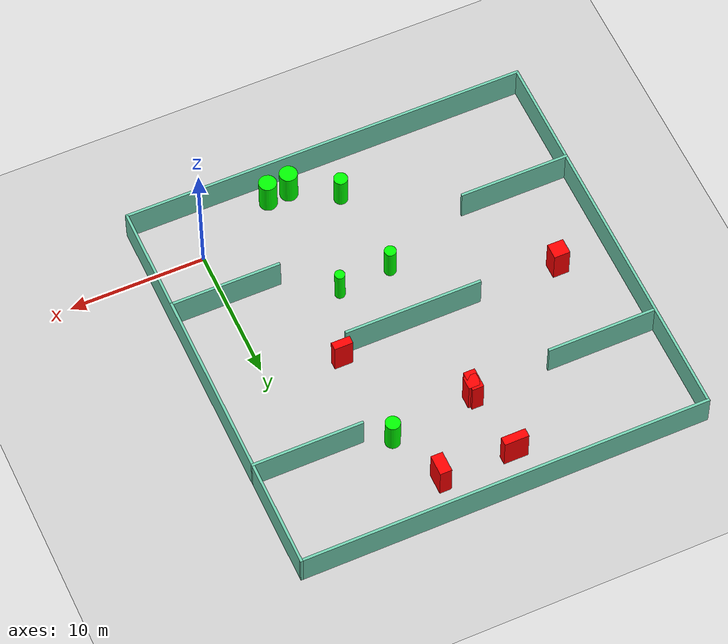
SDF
<sdf version="1.7">
 <world name="default">
  <light name="sun" type="directional">
   <pose>0 0 10 0 -0 0</pose>
   <diffuse>0.8 0.8 0.8 1</diffuse>
   <specular>0.2 0.2 0.2 1</specular>
   <attenuation>
    <range>1000</range>
    <constant>0.9</constant>
    <linear>0.01</linear>
    <quadratic>0.001</quadratic>
   </attenuation>
   <direction>-0.5 0.1 -0.9</direction>
   <spot><inner_angle>0</inner_angle><outer_angle>0</outer_angle><falloff>0</falloff></spot>
  </light>
  <model name="ground_plane">
   <static>1</static>
   <link name="link">
    <collision name="collision">
     <geometry><plane><normal>0 0 1</normal><size>100 100</size></plane></geometry>
     <surface>
      <contact><collide_bitmask>65535</collide_bitmask></contact>
      <friction><ode><mu>100</mu><mu2>50</mu2></ode></friction>
     </surface>
    </collision>
    <visual name="visual">
     <cast_shadows>0</cast_shadows>
     <geometry><plane><normal>0 0 1</normal><size>100 100</size></plane></geometry>
     <material>
      <script><uri>file://media/materials/scripts/gazebo.material</uri><name>Gazebo/Grey</name></script>
     </material>
    </visual>
   </link>
  </model>
  <gravity>0 0 -9.8</gravity>
  <magnetic_field>6e-06 2.3e-05 -4.2e-05</magnetic_field>
  <atmosphere type="adiabatic"/>
  <physics type="ode">
   <max_step_size>0.001</max_step_size>
   <real_time_factor>1</real_time_factor>
   <real_time_update_rate>1000</real_time_update_rate>
  </physics>
  <scene><ambient>0.4 0.4 0.4 1</ambient><background>0.7 0.7 0.7 1</background><shadows>1</shadows></scene>
  <spherical_coordinates>
   <surface_model>EARTH_WGS84</surface_model>
   <latitude_deg>0</latitude_deg>
   <longitude_deg>0</longitude_deg>
   <elevation>0</elevation>
   <heading_deg>0</heading_deg>
  </spherical_coordinates>
  <model name="my_base_walls">
   <link name="Wall_10">
    <collision name="Wall_10_Collision">
     <geometry><box><size>8.2 0.2 2.5</size></box></geometry>
     <pose>0 0 1.25 0 -0 0</pose>
    </collision>
    <visual name="Wall_10_Visual">
     <pose>0 0 1.25 0 -0 0</pose>
     <geometry><box><size>8.2 0.2 2.5</size></box></geometry>
     <material>
      <script><uri>file://media/materials/scripts/gazebo.material</uri><name>Gazebo/Grey</name></script>
      <ambient>0.435294 0.796078 0.67451 1</ambient>
     </material>
     <meta><layer>0</layer></meta>
    </visual>
    <pose>-11 -7 0 0 -0 0</pose>
   </link>
   <link name="Wall_12">
    <collision name="Wall_12_Collision">
     <geometry><box><size>8.2 0.2 2.5</size></box></geometry>
     <pose>0 0 1.25 0 -0 0</pose>
    </collision>
    <visual name="Wall_12_Visual">
     <pose>0 0 1.25 0 -0 0</pose>
     <geometry><box><size>8.2 0.2 2.5</size></box></geometry>
     <material>
      <script><uri>file://media/materials/scripts/gazebo.material</uri><name>Gazebo/Grey</name></script>
      <ambient>0.435294 0.796078 0.67451 1</ambient>
     </material>
     <meta><layer>0</layer></meta>
    </visual>
    <pose>-11 7 0 0 -0 0</pose>
   </link>
   <link name="Wall_14">
    <collision name="Wall_14_Collision">
     <geometry><box><size>8.2 0.2 2.5</size></box></geometry>
     <pose>0 0 1.25 0 -0 0</pose>
    </collision>
    <visual name="Wall_14_Visual">
     <pose>0 0 1.25 0 -0 0</pose>
     <geometry><box><size>8.2 0.2 2.5</size></box></geometry>
     <material>
      <script><uri>file://media/materials/scripts/gazebo.material</uri><name>Gazebo/Grey</name></script>
      <ambient>0.435294 0.796078 0.67451 1</ambient>
     </material>
     <meta><layer>0</layer></meta>
    </visual>
    <pose>11 7 0 0 -0 3.14159</pose>
   </link>
   <link name="Wall_16">
    <collision name="Wall_16_Collision">
     <geometry><box><size>10.2 0.2 2.5</size></box></geometry>
     <pose>0 0 1.25 0 -0 0</pose>
    </collision>
    <visual name="Wall_16_Visual">
     <pose>0 0 1.25 0 -0 0</pose>
     <geometry><box><size>10.2 0.2 2.5</size></box></geometry>
     <material>
      <script><uri>file://media/materials/scripts/gazebo.material</uri><name>Gazebo/Grey</name></script>
      <ambient>0.435294 0.796078 0.67451 1</ambient>
     </material>
     <meta><layer>0</layer></meta>
    </visual>
    <pose>0 0 0 0 -0 3.14159</pose>
   </link>
   <link name="Wall_2">
    <collision name="Wall_2_Collision">
     <geometry><box><size>30.2 0.2 2.5</size></box></geometry>
     <pose>0 0 1.25 0 -0 0</pose>
    </collision>
    <visual name="Wall_2_Visual">
     <pose>0 0 1.25 0 -0 0</pose>
     <geometry><box><size>30.2 0.2 2.5</size></box></geometry>
     <material>
      <script><uri>file://media/materials/scripts/gazebo.material</uri><name>Gazebo/Grey</name></script>
      <ambient>0.435294 0.796078 0.67451 1</ambient>
     </material>
     <meta><layer>0</layer></meta>
    </visual>
    <pose>0 -15 0 0 -0 3.14159</pose>
   </link>
   <link name="Wall_3">
    <collision name="Wall_3_Collision">
     <geometry><box><size>30.2 0.2 2.5</size></box></geometry>
     <pose>0 0 1.25 0 -0 0</pose>
    </collision>
    <visual name="Wall_3_Visual">
     <pose>0 0 1.25 0 -0 0</pose>
     <geometry><box><size>30.2 0.2 2.5</size></box></geometry>
     <material>
      <script><uri>file://media/materials/scripts/gazebo.material</uri><name>Gazebo/Grey</name></script>
      <ambient>0.435294 0.796078 0.67451 1</ambient>
     </material>
     <meta><layer>0</layer></meta>
    </visual>
    <pose>-15 0 0 0 -0 1.5708</pose>
   </link>
   <link name="Wall_4">
    <collision name="Wall_4_Collision">
     <geometry><box><size>30.2 0.2 2.5</size></box></geometry>
     <pose>0 0 1.25 0 -0 0</pose>
    </collision>
    <visual name="Wall_4_Visual">
     <pose>0 0 1.25 0 -0 0</pose>
     <geometry><box><size>30.2 0.2 2.5</size></box></geometry>
     <material>
      <script><uri>file://media/materials/scripts/gazebo.material</uri><name>Gazebo/Grey</name></script>
      <ambient>0.435294 0.796078 0.67451 1</ambient>
     </material>
     <meta><layer>0</layer></meta>
    </visual>
    <pose>0 15 0 0 -0 0</pose>
   </link>
   <link name="Wall_6">
    <collision name="Wall_6_Collision">
     <geometry><box><size>30.2 0.2 2.5</size></box></geometry>
     <pose>0 0 1.25 0 -0 0</pose>
    </collision>
    <visual name="Wall_6_Visual">
     <pose>0 0 1.25 0 -0 0</pose>
     <geometry><box><size>30.2 0.2 2.5</size></box></geometry>
     <material>
      <script><uri>file://media/materials/scripts/gazebo.material</uri><name>Gazebo/Grey</name></script>
      <ambient>0.435294 0.796078 0.67451 1</ambient>
     </material>
     <meta><layer>0</layer></meta>
    </visual>
    <pose>15 0 0 0 -0 1.5708</pose>
   </link>
   <link name="Wall_8">
    <collision name="Wall_8_Collision">
     <geometry><box><size>8.2 0.2 2.5</size></box></geometry>
     <pose>0 0 1.25 0 -0 0</pose>
    </collision>
    <visual name="Wall_8_Visual">
     <pose>0 0 1.25 0 -0 0</pose>
     <geometry><box><size>8.2 0.2 2.5</size></box></geometry>
     <material>
      <script><uri>file://media/materials/scripts/gazebo.material</uri><name>Gazebo/Grey</name></script>
      <ambient>0.435294 0.796078 0.67451 1</ambient>
     </material>
     <meta><layer>0</layer></meta>
    </visual>
    <pose>11 -7 0 0 -0 3.14159</pose>
   </link>
   <static>1</static>
   <pose>-11 11 0 0 -0 0</pose>
  </model>
  <model name="cylinder1">
   <static>1</static>
   <link name="link">
    <inertial>
     <mass>1</mass>
     <inertia><ixx>0.5</ixx><ixy>0</ixy><ixz>0</ixz><iyy>0.5</iyy><iyz>0</iyz><izz>1</izz></inertia>
    </inertial>
    <collision name="collision">
     <geometry><cylinder><radius>0.657306951703762</radius><length>2.5</length></cylinder></geometry>
    </collision>
    <visual name="visual">
     <geometry><cylinder><radius>0.657306951703762</radius><length>2.5</length></cylinder></geometry>
     <material>
      <ambient>0 1 0 1</ambient>
      <diffuse>0 1 0 1</diffuse>
      <specular>0.1 0.1 0.1 1</specular>
      <emissive>0 0 0 0</emissive>
     </material>
    </visual>
   </link>
   <pose>-7.640899892714817 -2.6398658856281516 1.25 0 0 0</pose>
  </model>
  <model name="cylinder2">
   <static>1</static>
   <link name="link">
    <inertial>
     <mass>1</mass>
     <inertia><ixx>0.5</ixx><ixy>0</ixy><ixz>0</ixz><iyy>0.5</iyy><iyz>0</iyz><izz>1</izz></inertia>
    </inertial>
    <collision name="collision">
     <geometry><cylinder><radius>0.6514274076461529</radius><length>2.5</length></cylinder></geometry>
    </collision>
    <visual name="visual">
     <geometry><cylinder><radius>0.6514274076461529</radius><length>2.5</length></cylinder></geometry>
     <material>
      <ambient>0 1 0 1</ambient>
      <diffuse>0 1 0 1</diffuse>
      <specular>0.1 0.1 0.1 1</specular>
      <emissive>0 0 0 0</emissive>
     </material>
    </visual>
   </link>
   <pose>-6.010498544388819 -2.5181601546630348 1.25 0 0 0</pose>
  </model>
  <model name="cylinder3">
   <static>1</static>
   <link name="link">
    <inertial>
     <mass>1</mass>
     <inertia><ixx>0.5</ixx><ixy>0</ixy><ixz>0</ixz><iyy>0.5</iyy><iyz>0</iyz><izz>1</izz></inertia>
    </inertial>
    <collision name="collision">
     <geometry><cylinder><radius>0.3742147983244909</radius><length>2.5</length></cylinder></geometry>
    </collision>
    <visual name="visual">
     <geometry><cylinder><radius>0.3742147983244909</radius><length>2.5</length></cylinder></geometry>
     <material>
      <ambient>0 1 0 1</ambient>
      <diffuse>0 1 0 1</diffuse>
      <specular>0.1 0.1 0.1 1</specular>
      <emissive>0 0 0 0</emissive>
     </material>
    </visual>
   </link>
   <pose>-7.486092789733913 6.535253138373317 1.25 0 0 0</pose>
  </model>
  <model name="cylinder4">
   <static>1</static>
   <link name="link">
    <inertial>
     <mass>1</mass>
     <inertia><ixx>0.5</ixx><ixy>0</ixy><ixz>0</ixz><iyy>0.5</iyy><iyz>0</iyz><izz>1</izz></inertia>
    </inertial>
    <collision name="collision">
     <geometry><cylinder><radius>0.5431039363538096</radius><length>2.5</length></cylinder></geometry>
    </collision>
    <visual name="visual">
     <geometry><cylinder><radius>0.5431039363538096</radius><length>2.5</length></cylinder></geometry>
     <material>
      <ambient>0 1 0 1</ambient>
      <diffuse>0 1 0 1</diffuse>
      <specular>0.1 0.1 0.1 1</specular>
      <emissive>0 0 0 0</emissive>
     </material>
    </visual>
   </link>
   <pose>-5.870815924553712 18.87865286535083 1.25 0 0 0</pose>
  </model>
  <model name="cylinder5">
   <static>1</static>
   <link name="link">
    <inertial>
     <mass>1</mass>
     <inertia><ixx>0.5</ixx><ixy>0</ixy><ixz>0</ixz><iyy>0.5</iyy><iyz>0</iyz><izz>1</izz></inertia>
    </inertial>
    <collision name="collision">
     <geometry><cylinder><radius>0.4330617416664923</radius><length>2.5</length></cylinder></geometry>
    </collision>
    <visual name="visual">
     <geometry><cylinder><radius>0.4330617416664923</radius><length>2.5</length></cylinder></geometry>
     <material>
      <ambient>0 1 0 1</ambient>
      <diffuse>0 1 0 1</diffuse>
      <specular>0.1 0.1 0.1 1</specular>
      <emissive>0 0 0 0</emissive>
     </material>
    </visual>
   </link>
   <pose>-11.456704727064384 6.199625103759072 1.25 0 0 0</pose>
  </model>
  <model name="cylinder6">
   <static>1</static>
   <link name="link">
    <inertial>
     <mass>1</mass>
     <inertia><ixx>0.5</ixx><ixy>0</ixy><ixz>0</ixz><iyy>0.5</iyy><iyz>0</iyz><izz>1</izz></inertia>
    </inertial>
    <collision name="collision">
     <geometry><cylinder><radius>0.510690880254495</radius><length>2.5</length></cylinder></geometry>
    </collision>
    <visual name="visual">
     <geometry><cylinder><radius>0.510690880254495</radius><length>2.5</length></cylinder></geometry>
     <material>
      <ambient>0 1 0 1</ambient>
      <diffuse>0 1 0 1</diffuse>
      <specular>0.1 0.1 0.1 1</specular>
      <emissive>0 0 0 0</emissive>
     </material>
    </visual>
   </link>
   <pose>-10.811563027122387 -0.7523413819897073 1.25 0 0 0</pose>
  </model>
  <model name="box1">
   <static>1</static>
   <link name="link">
    <inertial>
     <mass>1</mass>
     <inertia><ixx>0.083</ixx><ixy>0</ixy><ixz>0</ixz><iyy>0.083</iyy><iyz>0</iyz><izz>0.083</izz></inertia>
    </inertial>
    <collision name="collision">
     <geometry><box><size>0.9645108767572348 0.9712756801277465 2.5</size></box></geometry>
    </collision>
    <visual name="visual">
     <geometry><box><size>0.9645108767572348 0.9712756801277465 2.5</size></box></geometry>
     <material>
      <ambient>1 0 0 1</ambient>
      <diffuse>1 0 0 1</diffuse>
      <specular>0.1 0.1 0.1 1</specular>
      <emissive>0 0 0 0</emissive>
     </material>
    </visual>
    <sensor name="my_contact" type="contact">
     <contact><collision>box_collision</collision><topic>__default_topic__</topic></contact>
    </sensor>
   </link>
   <pose>-12.139190537768187 18.089552212428853 1.25 0 0 0</pose>
  </model>
  <model name="box2">
   <static>1</static>
   <link name="link">
    <inertial>
     <mass>1</mass>
     <inertia><ixx>0.083</ixx><ixy>0</ixy><ixz>0</ixz><iyy>0.083</iyy><iyz>0</iyz><izz>0.083</izz></inertia>
    </inertial>
    <collision name="collision">
     <geometry><box><size>0.8553665329041241 1.5168520748566787 2.5</size></box></geometry>
    </collision>
    <visual name="visual">
     <geometry><box><size>0.8553665329041241 1.5168520748566787 2.5</size></box></geometry>
     <material>
      <ambient>1 0 0 1</ambient>
      <diffuse>1 0 0 1</diffuse>
      <specular>0.1 0.1 0.1 1</specular>
      <emissive>0 0 0 0</emissive>
     </material>
    </visual>
    <sensor name="my_contact" type="contact">
     <contact><collision>box_collision</collision><topic>__default_topic__</topic></contact>
    </sensor>
   </link>
   <pose>-12.263157813127577 18.021458792410805 1.25 0 0 0</pose>
  </model>
  <model name="box3">
   <static>1</static>
   <link name="link">
    <inertial>
     <mass>1</mass>
     <inertia><ixx>0.083</ixx><ixy>0</ixy><ixz>0</ixz><iyy>0.083</iyy><iyz>0</iyz><izz>0.083</izz></inertia>
    </inertial>
    <collision name="collision">
     <geometry><box><size>1.8014210399354993 0.6286909136753522 2.5</size></box></geometry>
    </collision>
    <visual name="visual">
     <geometry><box><size>1.8014210399354993 0.6286909136753522 2.5</size></box></geometry>
     <material>
      <ambient>1 0 0 1</ambient>
      <diffuse>1 0 0 1</diffuse>
      <specular>0.1 0.1 0.1 1</specular>
      <emissive>0 0 0 0</emissive>
     </material>
    </visual>
    <sensor name="my_contact" type="contact">
     <contact><collision>box_collision</collision><topic>__default_topic__</topic></contact>
    </sensor>
   </link>
   <pose>-12.881823375072772 23.25879079046622 1.25 0 0 0</pose>
  </model>
  <model name="box4">
   <static>1</static>
   <link name="link">
    <inertial>
     <mass>1</mass>
     <inertia><ixx>0.083</ixx><ixy>0</ixy><ixz>0</ixz><iyy>0.083</iyy><iyz>0</iyz><izz>0.083</izz></inertia>
    </inertial>
    <collision name="collision">
     <geometry><box><size>1.195716344833916 1.1560725471256397 2.5</size></box></geometry>
    </collision>
    <visual name="visual">
     <geometry><box><size>1.195716344833916 1.1560725471256397 2.5</size></box></geometry>
     <material>
      <ambient>1 0 0 1</ambient>
      <diffuse>1 0 0 1</diffuse>
      <specular>0.1 0.1 0.1 1</specular>
      <emissive>0 0 0 0</emissive>
     </material>
    </visual>
    <sensor name="my_contact" type="contact">
     <contact><collision>box_collision</collision><topic>__default_topic__</topic></contact>
    </sensor>
   </link>
   <pose>-22.131074597287967 10.83032707638564 1.25 0 0 0</pose>
  </model>
  <model name="box5">
   <static>1</static>
   <link name="link">
    <inertial>
     <mass>1</mass>
     <inertia><ixx>0.083</ixx><ixy>0</ixy><ixz>0</ixz><iyy>0.083</iyy><iyz>0</iyz><izz>0.083</izz></inertia>
    </inertial>
    <collision name="collision">
     <geometry><box><size>0.8702006808242007 1.5399306651516778 2.5</size></box></geometry>
    </collision>
    <visual name="visual">
     <geometry><box><size>0.8702006808242007 1.5399306651516778 2.5</size></box></geometry>
     <material>
      <ambient>1 0 0 1</ambient>
      <diffuse>1 0 0 1</diffuse>
      <specular>0.1 0.1 0.1 1</specular>
      <emissive>0 0 0 0</emissive>
     </material>
    </visual>
    <sensor name="my_contact" type="contact">
     <contact><collision>box_collision</collision><topic>__default_topic__</topic></contact>
    </sensor>
   </link>
   <pose>-7.511566275515838 23.0891931499401 1.25 0 0 0</pose>
  </model>
  <model name="box6">
   <static>1</static>
   <link name="link">
    <inertial>
     <mass>1</mass>
     <inertia><ixx>0.083</ixx><ixy>0</ixy><ixz>0</ixz><iyy>0.083</iyy><iyz>0</iyz><izz>0.083</izz></inertia>
    </inertial>
    <collision name="collision">
     <geometry><box><size>1.3800891338134946 0.604288933819391 2.5</size></box></geometry>
    </collision>
    <visual name="visual">
     <geometry><box><size>1.3800891338134946 0.604288933819391 2.5</size></box></geometry>
     <material>
      <ambient>1 0 0 1</ambient>
      <diffuse>1 0 0 1</diffuse>
      <specular>0.1 0.1 0.1 1</specular>
      <emissive>0 0 0 0</emissive>
     </material>
    </visual>
    <sensor name="my_contact" type="contact">
     <contact><collision>box_collision</collision><topic>__default_topic__</topic></contact>
    </sensor>
   </link>
   <pose>-5.354645578179063 11.68634854092496 1.25 0 0 0</pose>
  </model>
 </world>
</sdf>
